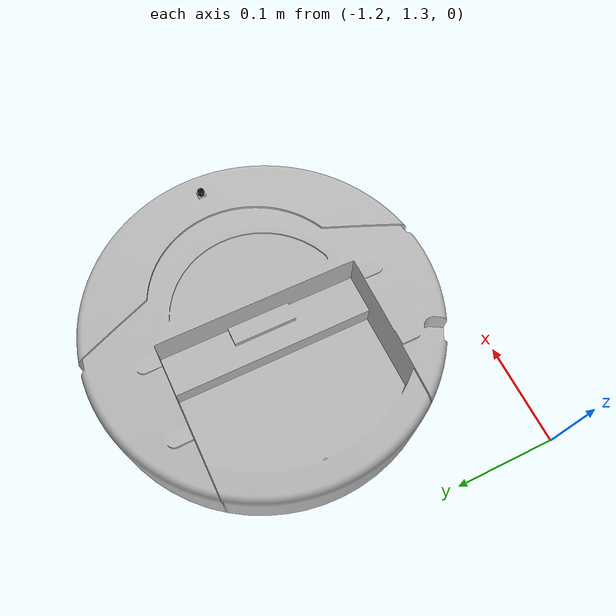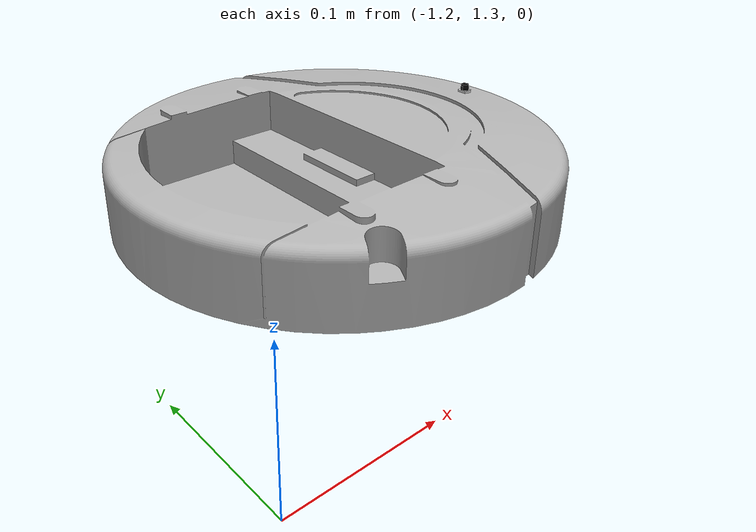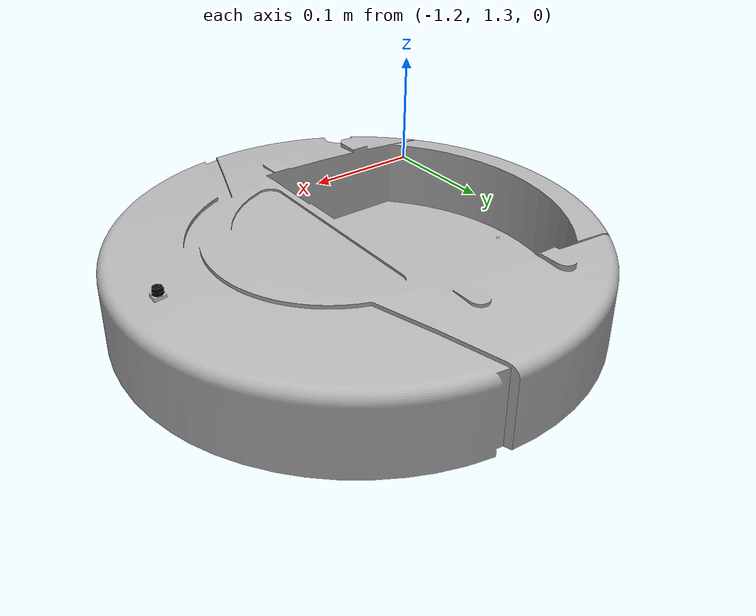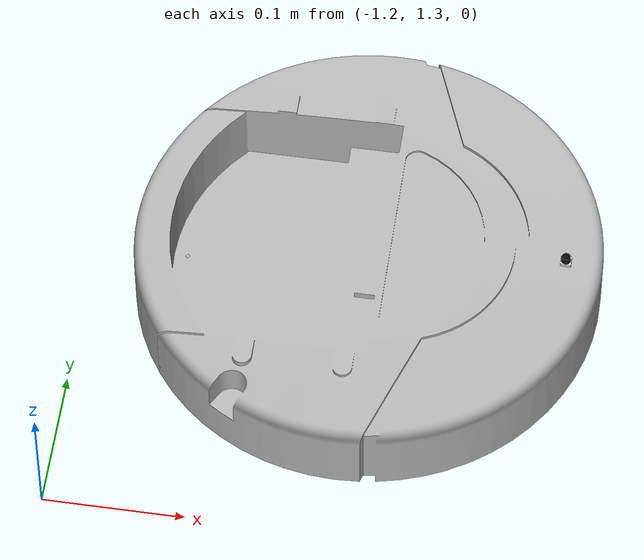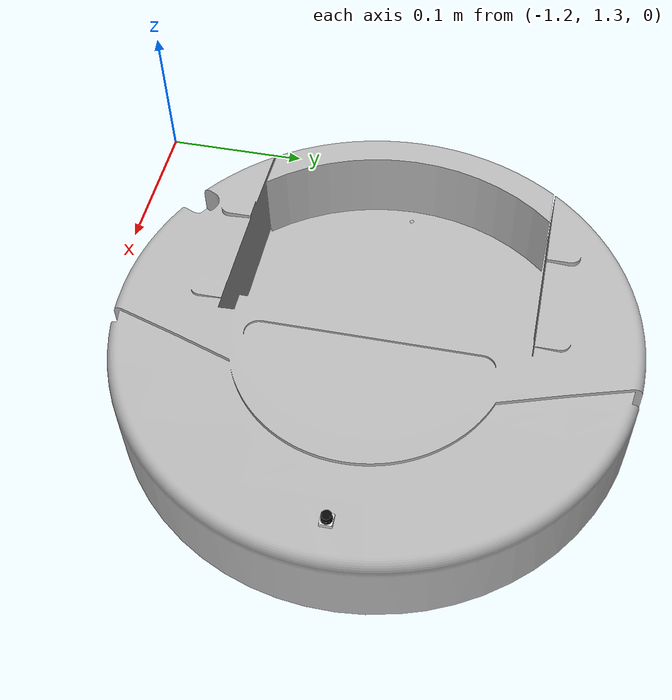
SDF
<sdf version="1.4">
 <world name="Vacuum Cleaner">
  <include><uri>model://roomba</uri><pose>-1 1.5 0 0 0 0</pose></include>
  <include><uri>model://ground_plane_sincolor</uri></include>
  <light name="sun" type="directional">
   <pose>0 0 10 0 -0 0</pose>
   <diffuse>0.8 0.8 0.8 1</diffuse>
   <specular>0.2 0.2 0.2 1</specular>
   <attenuation>
    <range>1000</range>
    <constant>0.9</constant>
    <linear>0.01</linear>
    <quadratic>0.001</quadratic>
   </attenuation>
   <direction>-0.5 0.1 -0.9</direction>
  </light>
  <scene><ambient>0.4 0.4 0.4 1</ambient><background>0.7 0.7 0.7 1</background><shadows>1</shadows></scene>
 </world>
</sdf>

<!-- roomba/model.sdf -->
<sdf version="1.5">
  <model name="roomba">

    <plugin name='roombaplugin' filename='libroombaplugin.so'>
      <alwaysOn>1</alwaysOn>
      <updateRate>10.0</updateRate>
      <bodyName>base</bodyName>
      <left_joint>left_wheel</left_joint>
      <right_joint>right_wheel</right_joint>
      <!-- Ice configuration -->
      <iceConfigFile>roombaplugin.cfg</iceConfigFile>
    </plugin>
    <link name="base">
      <inertial>
        <pose>0.001453 -0.000453 0.029787 0 0 0</pose>
        <inertia>
          <ixx>0.058640</ixx>
          <ixy>0.000124</ixy>
          <ixz>0.000615</ixz>
          <iyy>0.058786</iyy>
          <iyz>0.000014</iyz>
          <izz>1.532440</izz>
       </inertia>
        <mass>2.234000</mass>
     </inertial>
      <collision name="base_collision">
        <pose>0 0 0.047800 0 0 0</pose>
        <geometry>
          <mesh>
            <uri>model://roomba/meshes/create_body.dae</uri>
         </mesh>
       </geometry>
     </collision>
      <visual name="base_visual">
        <pose>0 0 0.047800 0 0 0</pose>
        <geometry>
          <mesh>
            <uri>model://roomba/meshes/create_body.dae</uri>
         </mesh>
       </geometry>
     </visual>
      <collision name="front_wheel_collision">
        <pose>0.130000 0 0.017000 0 1.570700 1.570700</pose>
        <geometry>
          <sphere>
            <radius>0.018000</radius>
         </sphere>
       </geometry>
        <surface>
          <friction>
            <ode>
              <mu>0</mu>
              <mu2>0</mu2>
              <fdir1>0 0 0</fdir1>
              <slip1>0</slip1>
              <slip2>0</slip2>
           </ode>
         </friction>
       </surface>
     </collision>
      <visual name="front_wheel_visual">
        <pose>0.130000 0 0.017000 0 1.570700 1.570700</pose>
        <geometry>
          <sphere>
            <radius>0.009000</radius>
         </sphere>
       </geometry>
     </visual>
      <collision name="rear_wheel_collision">
        <pose>-0.13 0 0.017 0 1.5707 1.5707</pose>
        <geometry>
          <sphere>
            <radius>0.015000</radius>
         </sphere>
       </geometry>
        <surface>
          <friction>
            <ode>
              <mu>0</mu>
              <mu2>0</mu2>
              <fdir1>0 0 0</fdir1>
              <slip1>0</slip1>
              <slip2>0</slip2>
           </ode>
         </friction>
       </surface>
     </collision>
      <visual name="rear_wheel_visual">
        <pose>-0.130000 0 0.017000 0 1.570700 1.570700</pose>
        <geometry>
          <sphere>
            <radius>0.007500</radius>
         </sphere>
       </geometry>
     </visual>
      <sensor name="bumper" type='contact'>
        <contact>
          <collision>base_collision</collision>
        </contact>
      </sensor>
      <sensor name="left_cliff_sensor" type="ray">
        <pose>0.070000 0.140000 0.027000 0 1.570790 0</pose>
        <ray>
          <scan>
            <horizontal>
              <samples>1</samples>
              <resolution>1.000000</resolution>
              <min_angle>0</min_angle>
              <max_angle>0</max_angle>
           </horizontal>
         </scan>
          <range>
            <min>0.010000</min>
            <max>0.040000</max>
            <resolution>0.100000</resolution>
         </range>
       </ray>
     </sensor>
      <sensor name="leftfront_cliff_sensor" type="ray">
        <pose>0.150000 0.040000 0.027000 0 1.570790 0</pose>
        <ray>
          <scan>
            <horizontal>
              <samples>1</samples>
              <resolution>1.000000</resolution>
              <min_angle>0</min_angle>
              <max_angle>0</max_angle>
           </horizontal>
         </scan>
          <range>
            <min>0.010000</min>
            <max>0.040000</max>
            <resolution>0.100000</resolution>
         </range>
       </ray>
     </sensor>
      <sensor name="right_cliff_sensor" type="ray">
        <pose>0.070000 -0.140000 0.027000 0 1.570790 0</pose>
        <ray>
          <scan>
            <horizontal>
              <samples>1</samples>
              <resolution>1.000000</resolution>
              <min_angle>0</min_angle>
              <max_angle>0</max_angle>
           </horizontal>
         </scan>
          <range>
            <min>0.010000</min>
            <max>0.040000</max>
            <resolution>0.100000</resolution>
         </range>
       </ray>
     </sensor>
      <sensor name="rightfront_cliff_sensor" type="ray">
        <pose>0.150000 -0.040000 0.027000 0 1.570790 0</pose>
        <ray>
          <scan>
            <horizontal>
              <samples>1</samples>
              <resolution>1.000000</resolution>
              <min_angle>0</min_angle>
              <max_angle>0</max_angle>
           </horizontal>
         </scan>
          <range>
            <min>0.010000</min>
            <max>0.040000</max>
            <resolution>0.100000</resolution>
         </range>
       </ray>
     </sensor>
      <sensor name="wall_sensor" type="ray">
        <pose>0.090000 -0.120000 0.059000 0 0 -1.000000</pose>
        <ray>
          <scan>
            <horizontal>
              <samples>1</samples>
              <resolution>1.000000</resolution>
              <min_angle>0</min_angle>
              <max_angle>0</max_angle>
           </horizontal>
         </scan>
          <range>
            <min>0.016000</min>
            <max>0.040000</max>
            <resolution>0.100000</resolution>
         </range>
       </ray>
     </sensor>
   </link>
    <link name="left_wheel">
      <pose>0 0.130000 0.032000 0 0 0</pose>
      <inertial>
        <inertia>
          <ixx>0.001000</ixx>
          <ixy>0</ixy>
          <ixz>0</ixz>
          <iyy>0.001000</iyy>
          <iyz>0</iyz>
          <izz>0.001000</izz>
       </inertia>
        <mass>0.010000</mass>
     </inertial>
      <collision name="collision">
        <pose>0 0 0 0 1.570700 1.570700</pose>
        <geometry>
          <cylinder>
            <radius>0.033000</radius>
            <length>0.023000</length>
         </cylinder>
       </geometry>
        <surface>
          <friction>
            <ode>
              <mu>10</mu>
              <mu2>10</mu2>
              <fdir1>0 0 0</fdir1>
              <slip1>0</slip1>
              <slip2>0</slip2>
           </ode>
         </friction>
       </surface>
     </collision>
      <visual name="visual">
        <pose>0 0 0 0 1.570700 1.570700</pose>
        <geometry>
          <cylinder>
            <radius>0.033000</radius>
            <length>0.023000</length>
         </cylinder>
       </geometry>
     </visual>
   </link>
    <link name="right_wheel">
      <pose>0 -0.130000 0.032000 0 0 0</pose>
      <inertial>
        <inertia>
          <ixx>0.001000</ixx>
          <ixy>0</ixy>
          <ixz>0</ixz>
          <iyy>0.001000</iyy>
          <iyz>0</iyz>
          <izz>0.001000</izz>
       </inertia>
        <mass>0.010000</mass>
     </inertial>
      <collision name="collision">
        <pose>0 0 0 0 1.570700 1.570700</pose>
        <geometry>
          <cylinder>
            <radius>0.033000</radius>
            <length>0.023000</length>
         </cylinder>
       </geometry>
        <surface>
          <friction>
            <ode>
              <mu>10</mu>
              <mu2>10</mu2>
              <fdir1>0 0 0</fdir1>
              <slip1>0</slip1>
              <slip2>0</slip2>
           </ode>
         </friction>
       </surface>
     </collision>
      <visual name="visual">
        <pose>0 0 0 0 1.570700 1.570700</pose>
        <geometry>
          <cylinder>
            <radius>0.033000</radius>
            <length>0.023000</length>
         </cylinder>
       </geometry>
     </visual>
   </link>
   <link name='laser'>
     <pose>0.139000 0.000000 0.0752000 0.000000 0.000000 0.000000</pose>
     <gravity>0</gravity>
     <inertial>
       <mass>0.100000</mass>
       <inertia>
         <ixx>1.000000</ixx>
         <ixy>0.000000</ixy>
         <ixz>0.000000</ixz>
         <iyy>1.000000</iyy>
         <iyz>0.000000</iyz>
         <izz>1.000000</izz>
       </inertia>
     </inertial>
     <visual name='visual'>
       <geometry>
         <mesh>
           <uri>model://roomba/meshes/hokuyo.dae</uri>
         </mesh>
       </geometry>
     </visual>
     <collision name='collision-base'>
       <pose>0.000000 0.000000 -0.014500 0.000000 0.000000 0.000000</pose>
         <geometry>
           <box>
             <size>0.050000 0.050000 0.041000</size>
           </box>
         </geometry>
         <max_contacts>10</max_contacts>
     </collision>
     <collision name='collision-top'>
       <pose>0.000000 0.000000 0.020500 0.000000 0.000000 0.000000</pose>
       <geometry>
         <cylinder>
           <radius>0.021000</radius>
             <length>0.029000</length>
         </cylinder>
       </geometry>
       <max_contacts>10</max_contacts>
     </collision>
     <sensor name='laser' type='ray'>
       <ray>
         <scan>
           <horizontal>
             <samples>180</samples>
             <resolution>1.000000</resolution>
             <min_angle>-1.570000</min_angle>
             <max_angle>1.570000</max_angle>
           </horizontal>
         </scan>
         <range>
           <min>0.080000</min>
           <max>10.000000</max>
           <resolution>0.010000</resolution>
         </range>
       </ray>
       <update_rate>20.000000</update_rate>
       <always_on>1</always_on>
       <visualize>1</visualize>
     </sensor>
     <velocity_decay>
       <linear>0.000000</linear>
       <angular>0.000000</angular>
     </velocity_decay>
     <self_collide>0</self_collide>
     <kinematic>0</kinematic>
   </link>
    <joint name="left_wheel" type="revolute">
      <parent>base</parent>
      <child>left_wheel</child>
      <axis>
        <xyz>0 1 0</xyz>
        <use_parent_model_frame>true</use_parent_model_frame>
     </axis>
   </joint>
    <joint name="right_wheel" type="revolute">
      <parent>base</parent>
      <child>right_wheel</child>
      <axis>
        <xyz>0 1 0</xyz>
        <use_parent_model_frame>true</use_parent_model_frame>
     </axis>
   </joint>
   <joint name='joint_laser' type='fixed'>
     <parent>base</parent>
     <child>laser</child>
     <axis>
       <xyz>0 0 0</xyz>
     </axis>
   </joint>
 </model>
</sdf>

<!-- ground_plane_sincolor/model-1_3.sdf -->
<sdf version="1.3">
  <model name="ground_plane">
    <static>true</static>
    <link name="link">
      <collision name="collision">
        <geometry>
          <plane>
            <normal>0 0 1</normal>
            <size>100 100</size>
        </plane>
      </geometry>
        <surface>
          <friction>
            <ode>
              <mu>100</mu>
              <mu2>50</mu2>
          </ode>
        </friction>
      </surface>
    </collision>
  </link>
</model>
</sdf>
